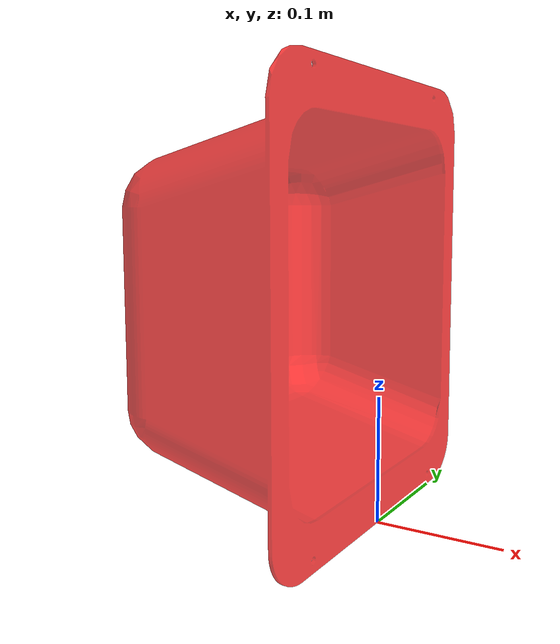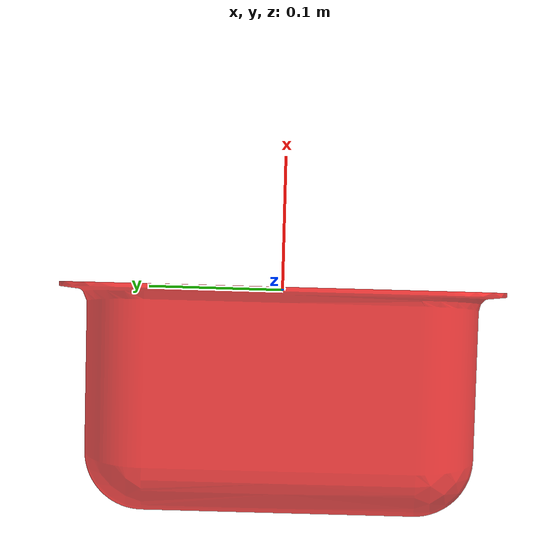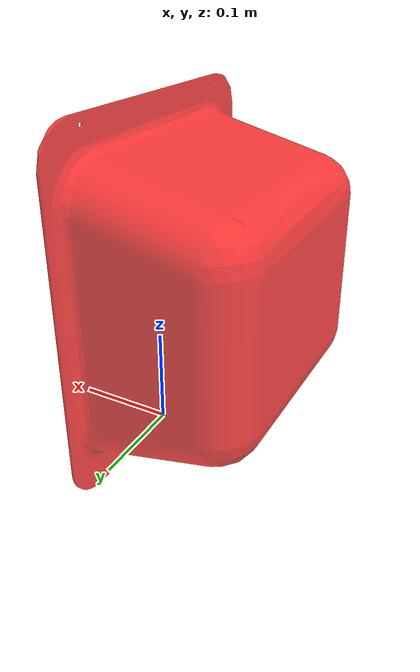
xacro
<?xml version="1.0"?>
<robot xmlns:xacro="http://wiki.ros.org/xacro" name="cubby">
  <xacro:arg name="name" default=""/>
  <xacro:arg name="prefix" default=""/>

  <xacro:include filename="$(find trainer)/urdf/trainer_cubby.xacro"/>

  <link name="world"/>

  <xacro:cubby name="$(arg name)" prefix="$(arg prefix)" parent="world">
    <origin xyz="0 0 0" rpy="0 0 0"/>
  </xacro:cubby>

</robot>

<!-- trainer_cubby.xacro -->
<robot xmlns:xacro="http://wiki.ros.org/xacro">

  <xacro:macro name="cubby" params="
    name:=''
    prefix:=''
    parent:=''
    *origin">

    <joint name="${prefix}cubby_base_joint" type="fixed">
      <parent link="${parent}"/>
      <child link="${prefix}cubby"/>
      <xacro:insert_block name="origin"/>
    </joint>

    <link name="${prefix}cubby">
      <visual>
        <origin xyz="0.0 0.0 0.0" rpy="0 0 0"/>
          <geometry>
            <mesh filename="file://$(find trainer)/meshes/visual/cubby.stl"/>
          </geometry>
        <material name="red">
          <color rgba="1.0 0 0 0.75"/>
        </material>
      </visual>
      <collision>
        <origin xyz="0.0 0.0 0.0" rpy="0 0 0"/>
          <geometry>
            <mesh filename="file://$(find trainer)/meshes/collision/cubby.stl"/>
          </geometry>
        <material name="red">
          <color rgba="1.0 0 0 0.75"/>
        </material>
      </collision>
    </link>

  </xacro:macro>
</robot>
